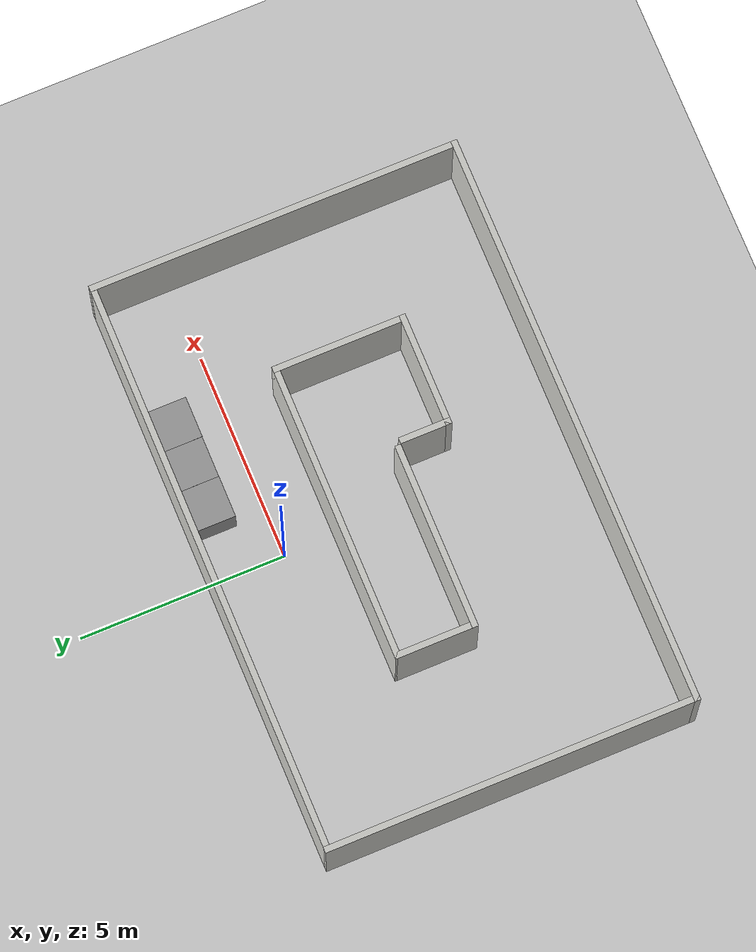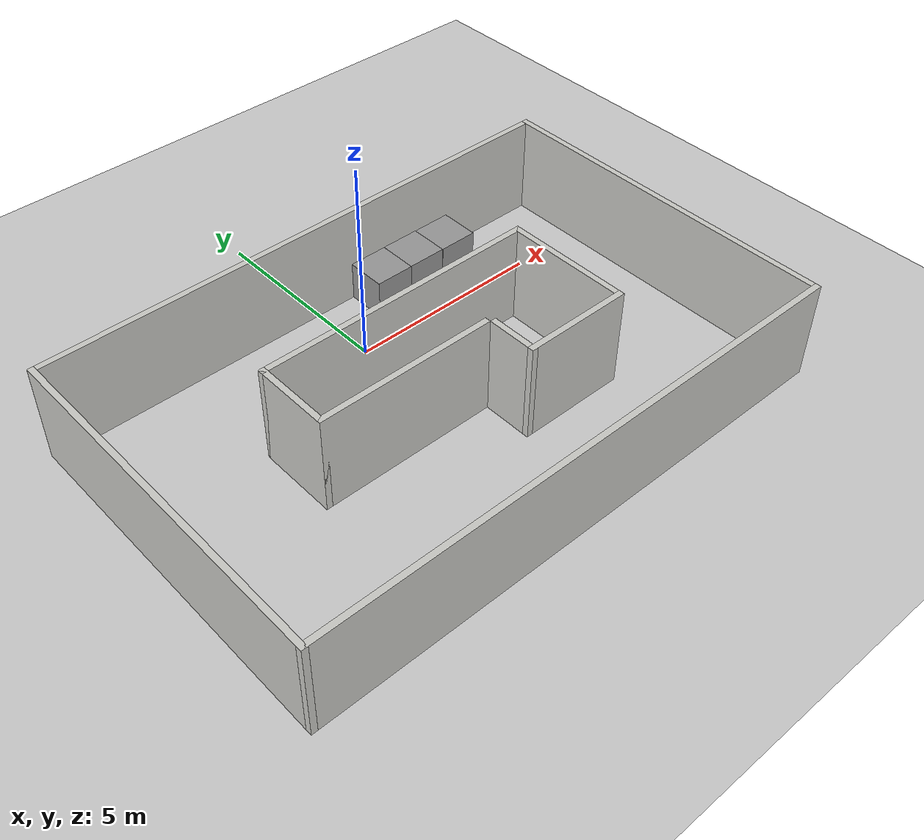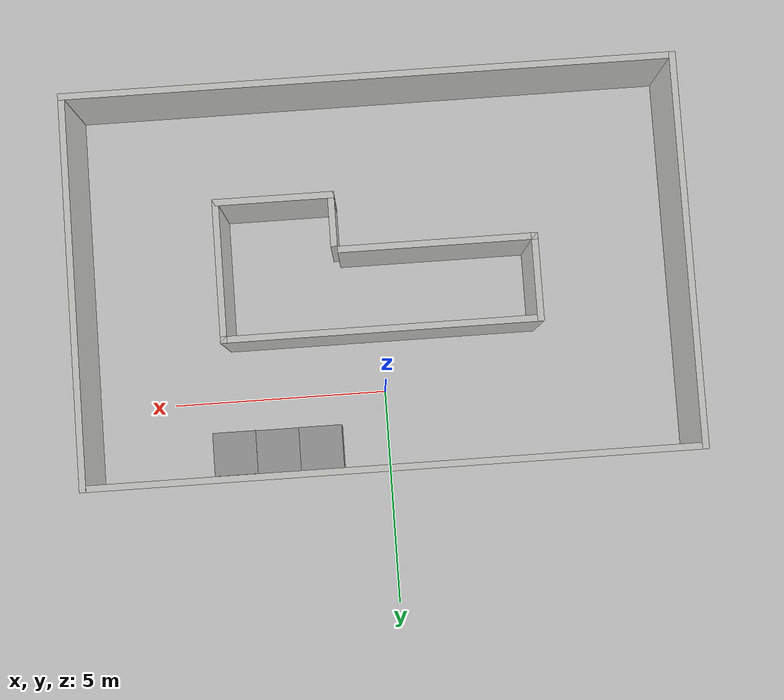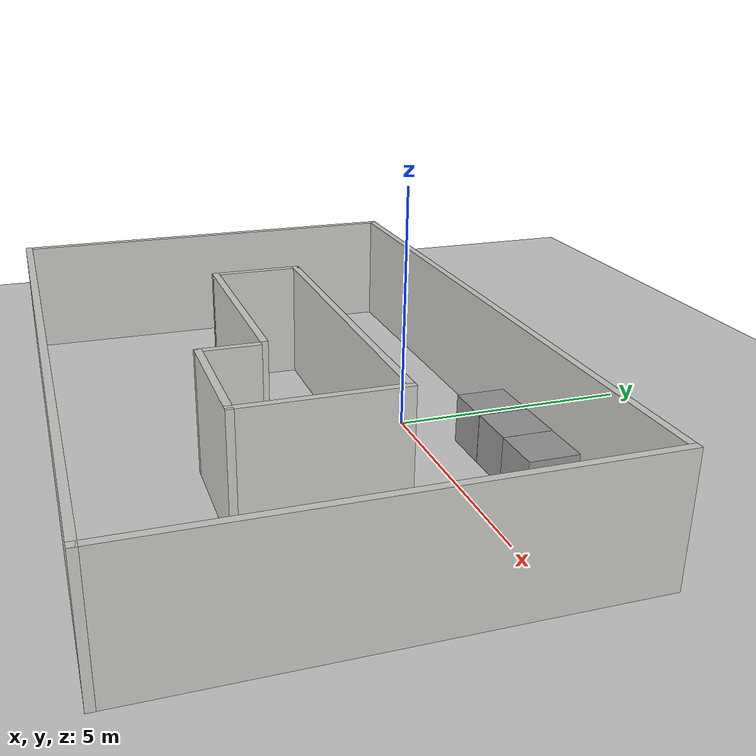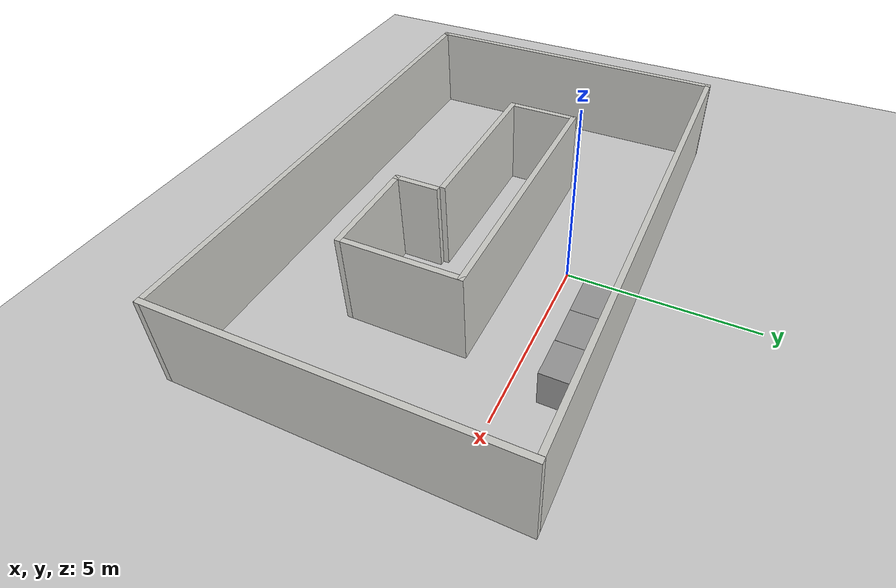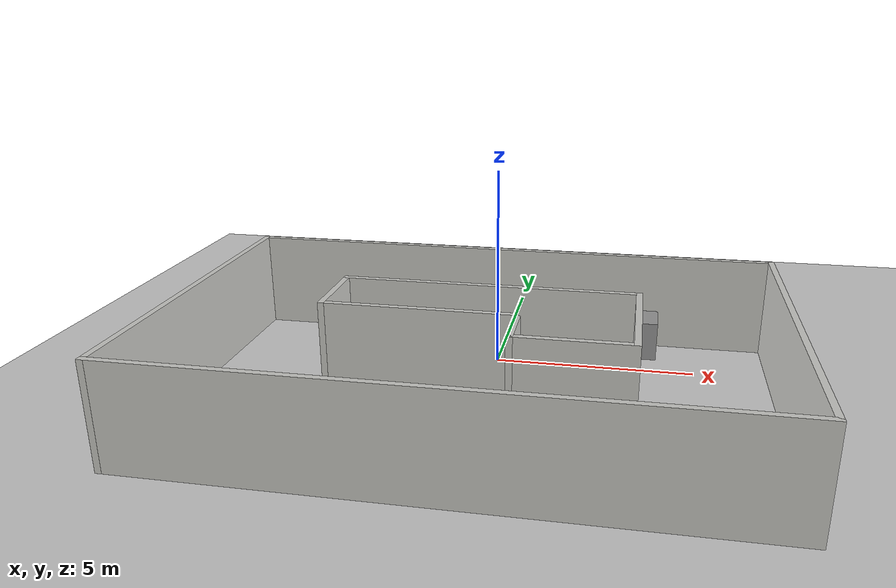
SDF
<sdf version="1.6">
 <world name="default">
  <light name="sun" type="directional">
   <pose>0 0 10 0 -0 0</pose>
   <diffuse>0.8 0.8 0.8 1</diffuse>
   <specular>0.2 0.2 0.2 1</specular>
   <attenuation>
    <range>1000</range>
    <constant>0.9</constant>
    <linear>0.01</linear>
    <quadratic>0.001</quadratic>
   </attenuation>
   <direction>-0.5 0.1 -0.9</direction>
  </light>
  <model name="ground_plane">
   <static>1</static>
   <link name="link">
    <collision name="collision">
     <geometry><plane><normal>0 0 1</normal><size>100 100</size></plane></geometry>
     <surface><friction><ode><mu>100</mu><mu2>50</mu2></ode></friction></surface>
    </collision>
    <visual name="visual">
     <cast_shadows>0</cast_shadows>
     <geometry><plane><normal>0 0 1</normal><size>100 100</size></plane></geometry>
     <material>
      <script><uri>file://media/materials/scripts/gazebo.material</uri><name>Gazebo/Grey</name></script>
     </material>
    </visual>
    <velocity_decay><linear>0</linear><angular>0</angular></velocity_decay>
   </link>
  </model>
  <physics name="default_physics" default="0" type="ode">
   <max_step_size>0.01</max_step_size>
   <real_time_factor>1</real_time_factor>
   <real_time_update_rate>100</real_time_update_rate>
  </physics>
  <scene><ambient>0.4 0.4 0.4 1</ambient><background>0.7 0.7 0.7 1</background><shadows>1</shadows></scene>
  <spherical_coordinates>
   <surface_model>EARTH_WGS84</surface_model>
   <latitude_deg>0</latitude_deg>
   <longitude_deg>0</longitude_deg>
   <elevation>0</elevation>
   <heading_deg>0</heading_deg>
  </spherical_coordinates>
  <gravity>0 0 -9.8</gravity>
  <magnetic_field>6e-06 2.3e-05 -4.2e-05</magnetic_field>
  <atmosphere type="adiabatic"/>
  <model name="room_0">
   <pose>-0.064136 -2.60385 0 0 -0 0</pose>
   <link name="Wall_0">
    <collision name="Wall_0_Collision">
     <geometry><box><size>13.75 0.15 2.5</size></box></geometry>
     <pose>0 0 1.25 0 -0 0</pose>
    </collision>
    <visual name="Wall_0_Visual">
     <pose>0 0 1.25 0 -0 0</pose>
     <geometry><box><size>13.75 0.15 2.5</size></box></geometry>
     <material>
      <script><uri>file://media/materials/scripts/gazebo.material</uri><name>Gazebo/CeilingTiled</name></script>
      <ambient>1 1 1 1</ambient>
     </material>
    </visual>
    <pose>-0.027328 4.425 0 0 -0 0</pose>
   </link>
   <link name="Wall_12">
    <collision name="Wall_12_Collision">
     <geometry><box><size>2 0.15 2.5</size></box></geometry>
     <pose>0 0 1.25 0 -0 0</pose>
    </collision>
    <visual name="Wall_12_Visual">
     <pose>0 0 1.25 0 -0 0</pose>
     <geometry><box><size>2 0.15 2.5</size></box></geometry>
     <material>
      <script><uri>file://media/materials/scripts/gazebo.material</uri><name>Gazebo/CeilingTiled</name></script>
      <ambient>1 1 1 1</ambient>
     </material>
    </visual>
    <pose>-3.49908 0.404259 0 0 0 -1.5708</pose>
   </link>
   <link name="Wall_13">
    <collision name="Wall_13_Collision">
     <geometry><box><size>4.5 0.15 2.5</size></box></geometry>
     <pose>0 0 1.25 0 -0 0</pose>
    </collision>
    <visual name="Wall_13_Visual">
     <pose>0 0 1.25 0 -0 0</pose>
     <geometry><box><size>4.5 0.15 2.5</size></box></geometry>
     <material>
      <script><uri>file://media/materials/scripts/gazebo.material</uri><name>Gazebo/CeilingTiled</name></script>
      <ambient>1 1 1 1</ambient>
     </material>
    </visual>
    <pose>-1.32408 -0.520741 0 0 -0 0</pose>
   </link>
   <link name="Wall_2">
    <collision name="Wall_2_Collision">
     <geometry><box><size>9 0.15 2.5</size></box></geometry>
     <pose>0 0 1.25 0 -0 0</pose>
    </collision>
    <visual name="Wall_2_Visual">
     <pose>0 0 1.25 0 -0 0</pose>
     <geometry><box><size>9 0.15 2.5</size></box></geometry>
     <material>
      <script><uri>file://media/materials/scripts/gazebo.material</uri><name>Gazebo/CeilingTiled</name></script>
      <ambient>1 1 1 1</ambient>
     </material>
    </visual>
    <pose>6.925 0 0 0 0 -1.5708</pose>
   </link>
   <link name="Wall_3">
    <collision name="Wall_3_Collision">
     <geometry><box><size>14 0.15 2.5</size></box></geometry>
     <pose>0 0 1.25 0 -0 0</pose>
    </collision>
    <visual name="Wall_3_Visual">
     <pose>0 0 1.25 0 -0 0</pose>
     <geometry><box><size>14 0.15 2.5</size></box></geometry>
     <material>
      <script><uri>file://media/materials/scripts/gazebo.material</uri><name>Gazebo/CeilingTiled</name></script>
      <ambient>1 1 1 1</ambient>
     </material>
    </visual>
    <pose>0 -4.425 0 0 -0 3.14159</pose>
   </link>
   <link name="Wall_4">
    <collision name="Wall_4_Collision">
     <geometry><box><size>9 0.15 2.5</size></box></geometry>
     <pose>0 0 1.25 0 -0 0</pose>
    </collision>
    <visual name="Wall_4_Visual">
     <pose>0 0 1.25 0 -0 0</pose>
     <geometry><box><size>9 0.15 2.5</size></box></geometry>
     <material>
      <script><uri>file://media/materials/scripts/gazebo.material</uri><name>Gazebo/CeilingTiled</name></script>
      <ambient>1 1 1 1</ambient>
     </material>
    </visual>
    <pose>-6.925 0 0 0 -0 1.5708</pose>
   </link>
   <link name="Wall_6">
    <collision name="Wall_6_Collision">
     <geometry><box><size>7.25 0.15 2.5</size></box></geometry>
     <pose>0 0 1.25 0 -0 0</pose>
    </collision>
    <visual name="Wall_6_Visual">
     <pose>0 0 1.25 0 -0 0</pose>
     <geometry><box><size>7.25 0.15 2.5</size></box></geometry>
     <material>
      <script><uri>file://media/materials/scripts/gazebo.material</uri><name>Gazebo/CeilingTiled</name></script>
      <ambient>1 1 1 1</ambient>
     </material>
    </visual>
    <pose>0.050923 1.32926 0 0 -0 0</pose>
   </link>
   <link name="Wall_7">
    <collision name="Wall_7_Collision">
     <geometry><box><size>3.25 0.15 2.5</size></box></geometry>
     <pose>0 0 1.25 0 -0 0</pose>
    </collision>
    <visual name="Wall_7_Visual">
     <pose>0 0 1.25 0 -0 0</pose>
     <geometry><box><size>3.25 0.15 2.5</size></box></geometry>
     <material>
      <script><uri>file://media/materials/scripts/gazebo.material</uri><name>Gazebo/CeilingTiled</name></script>
      <ambient>1 1 1 1</ambient>
     </material>
    </visual>
    <pose>3.60092 -0.220741 0 0 0 -1.5708</pose>
   </link>
   <link name="Wall_8">
    <collision name="Wall_8_Collision">
     <geometry><box><size>2.75 0.15 2.5</size></box></geometry>
     <pose>0 0 1.25 0 -0 0</pose>
    </collision>
    <visual name="Wall_8_Visual">
     <pose>0 0 1.25 0 -0 0</pose>
     <geometry><box><size>2.75 0.15 2.5</size></box></geometry>
     <material>
      <script><uri>file://media/materials/scripts/gazebo.material</uri><name>Gazebo/CeilingTiled</name></script>
      <ambient>1 1 1 1</ambient>
     </material>
    </visual>
    <pose>2.30092 -1.77074 0 0 -0 3.14159</pose>
   </link>
   <link name="Wall_9">
    <collision name="Wall_9_Collision">
     <geometry><box><size>1.25 0.15 2.5</size></box></geometry>
     <pose>0 0 1.25 0 -0 0</pose>
    </collision>
    <visual name="Wall_9_Visual">
     <pose>0 0 1.25 0 -0 0</pose>
     <geometry><box><size>1.25 0.15 2.5</size></box></geometry>
     <material>
      <script><uri>file://media/materials/scripts/gazebo.material</uri><name>Gazebo/CeilingTiled</name></script>
      <ambient>1 1 1 1</ambient>
     </material>
    </visual>
    <pose>1.00092 -1.22074 0 0 -0 1.5708</pose>
   </link>
   <static>1</static>
  </model>
  <model name="unit_box_0">
   <pose>1.57495 1.24265 0.49907 -0.0001 -0 -0.000739</pose>
   <link name="link">
    <inertial>
     <mass>1</mass>
     <inertia>
      <ixx>0.166667</ixx>
      <ixy>0</ixy>
      <ixz>0</ixz>
      <iyy>0.166667</iyy>
      <iyz>0</iyz>
      <izz>0.166667</izz>
     </inertia>
    </inertial>
    <collision name="collision"><geometry><box><size>1 1 1</size></box></geometry></collision>
    <visual name="visual">
     <geometry><box><size>1 1 1</size></box></geometry>
     <material>
      <script><name>Gazebo/Grey</name><uri>file://media/materials/scripts/gazebo.material</uri></script>
     </material>
    </visual>
   </link>
  </model>
  <model name="unit_box_1">
   <pose>2.57501 1.24578 0.500004 -2.1e-05 1e-06 -0.00069</pose>
   <link name="link">
    <inertial>
     <mass>1</mass>
     <inertia>
      <ixx>0.166667</ixx>
      <ixy>0</ixy>
      <ixz>0</ixz>
      <iyy>0.166667</iyy>
      <iyz>0</iyz>
      <izz>0.166667</izz>
     </inertia>
    </inertial>
    <collision name="collision"><geometry><box><size>1 1 1</size></box></geometry></collision>
    <visual name="visual">
     <geometry><box><size>1 1 1</size></box></geometry>
     <material>
      <script><name>Gazebo/Grey</name><uri>file://media/materials/scripts/gazebo.material</uri></script>
     </material>
    </visual>
   </link>
  </model>
  <model name="unit_box_2">
   <pose>3.57542 1.23938 0.49967 -0.00066 -0 -0.000402</pose>
   <link name="link">
    <inertial>
     <mass>1</mass>
     <inertia>
      <ixx>0.166667</ixx>
      <ixy>0</ixy>
      <ixz>0</ixz>
      <iyy>0.166667</iyy>
      <iyz>0</iyz>
      <izz>0.166667</izz>
     </inertia>
    </inertial>
    <collision name="collision"><geometry><box><size>1 1 1</size></box></geometry></collision>
    <visual name="visual">
     <geometry><box><size>1 1 1</size></box></geometry>
     <material>
      <script><name>Gazebo/Grey</name><uri>file://media/materials/scripts/gazebo.material</uri></script>
     </material>
    </visual>
   </link>
  </model>
 </world>
</sdf>
